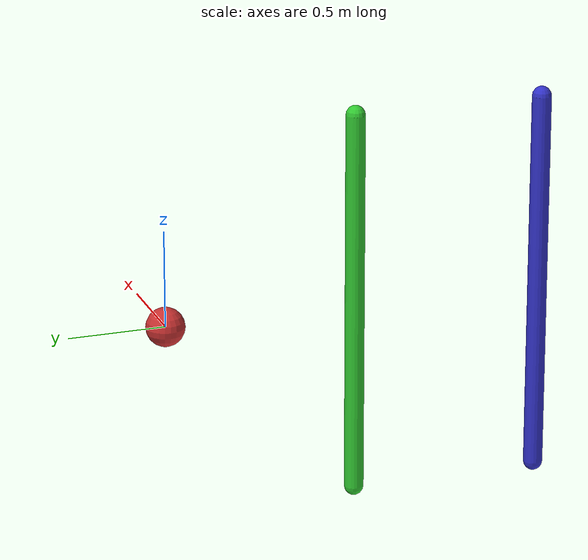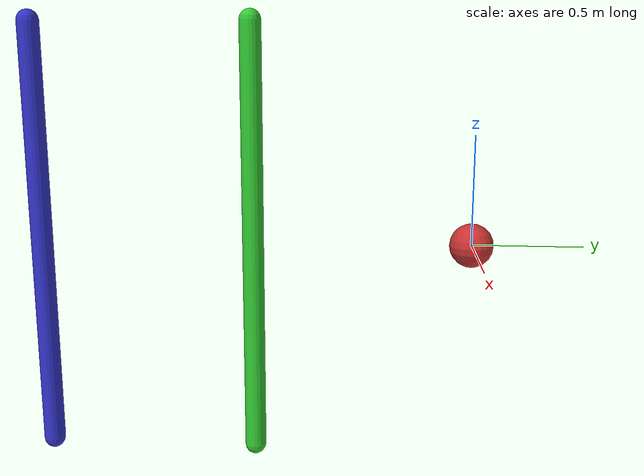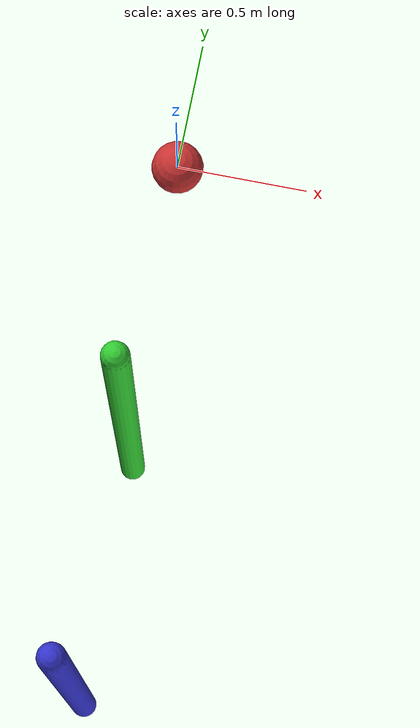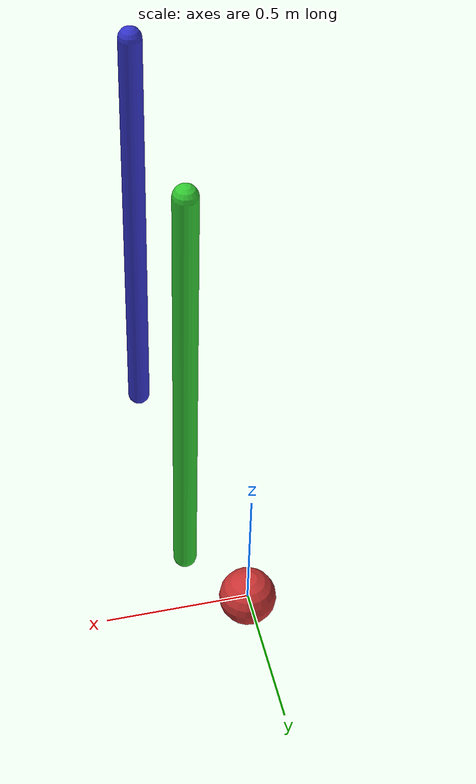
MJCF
<mujoco>
    <worldbody>
        <!-- Base pivot -->
        <body name="pivot1" pos="0 0 0">
            <joint name="joint1" type="hinge" axis="0 0 1" />
            <geom type="sphere" size="0.1" rgba="0.8 0.2 0.2 1" />

            <!-- First pendulum link -->
            <body name="link1" pos="0 -1 0">
                <geom type="capsule" size="0.05 1" rgba="0.2 0.8 0.2 1" />
                <joint name="joint2" type="hinge" axis="0 0 1" />

                <!-- Second pendulum link -->
                <body name="link2" pos="0 -1 0">
                    <geom type="capsule" size="0.05 1" rgba="0.2 0.2 0.8 1" />
                </body>
            </body>
        </body>
    </worldbody>

    <!-- Physics settings -->
    <option timestep="0.01" />
    <size njmax="500" nconmax="100" />
</mujoco>
